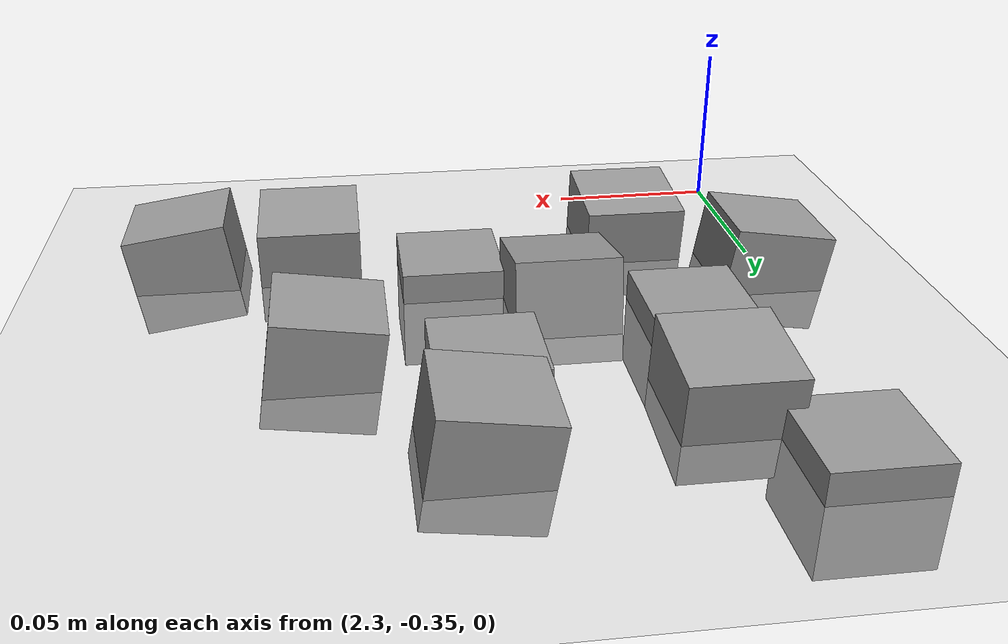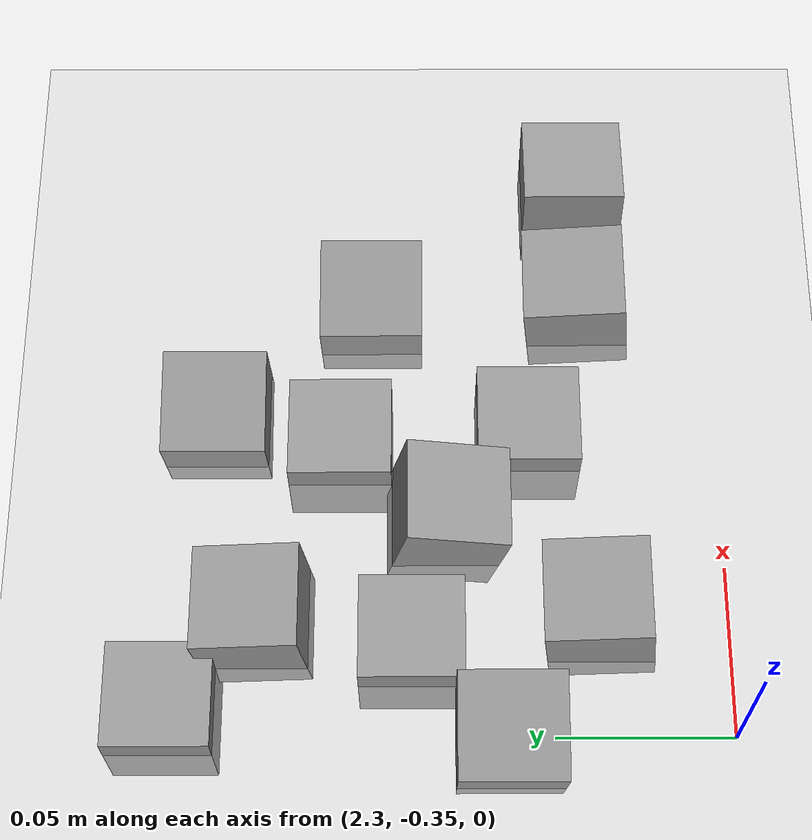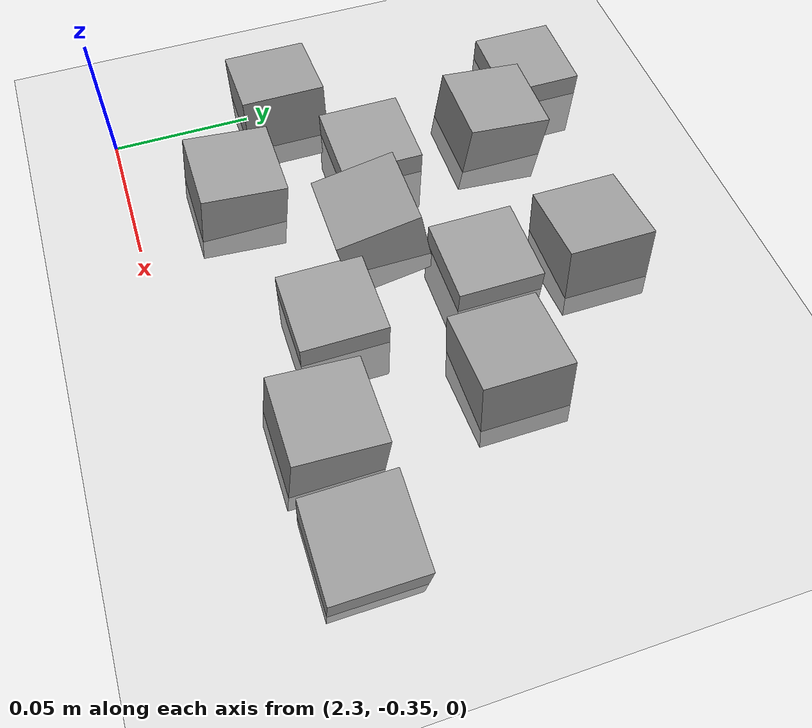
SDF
<sdf version="1.7">
 <world name="default">
  <model name="ground_plane">
   <static>1</static>
   <link name="link">
    <collision name="collision">
     <geometry><plane><normal>0 0 1</normal><size>100 100</size></plane></geometry>
     <surface><friction><ode><mu>100</mu><mu2>50</mu2></ode></friction></surface>
    </collision>
    <visual name="visual">
     <cast_shadows>0</cast_shadows>
     <geometry><plane><normal>0 0 1</normal><size>100 100</size></plane></geometry>
     <material>
      <script><uri>file://media/materials/scripts/gazebo.material</uri><name>Gazebo/Grey</name></script>
     </material>
    </visual>
   </link>
  </model>
  <model name="stone_road_4">
   <link name="link_0_clone_13">
    <inertial>
     <mass>1</mass>
     <inertia>
      <ixx>0.166667</ixx>
      <ixy>0</ixy>
      <ixz>0</ixz>
      <iyy>0.166667</iyy>
      <iyz>0</iyz>
      <izz>0.166667</izz>
     </inertia>
    </inertial>
    <pose>0.107601 -0.134881 0.003778 0.2 -0 0</pose>
    <kinematic>1</kinematic>
    <visual name="visual">
     <geometry><box><size>0.03 0.03 0.03</size></box></geometry>
     <material>
      <lighting>1</lighting>
      <script><uri>file://media/materials/scripts/gazebo.material</uri><name>Gazebo/Grey</name></script>
      <shader type="pixel"><normal_map>__default__</normal_map></shader>
      <ambient>0.3 0.3 0.3 1</ambient>
      <diffuse>0.7 0.7 0.7 1</diffuse>
      <specular>0.01 0.01 0.01 1</specular>
      <emissive>0 0 0 1</emissive>
     </material>
    </visual>
    <collision name="collision">
     <geometry><box><size>0.03 0.03 0.03</size></box></geometry>
     <surface>
      <friction>
       <ode><mu>1</mu><mu2>1</mu2><fdir1>0 0 0</fdir1><slip1>0</slip1><slip2>0</slip2></ode>
       <torsional>
        <coefficient>1</coefficient>
        <patch_radius>0</patch_radius>
        <surface_radius>0</surface_radius>
        <use_patch_radius>1</use_patch_radius>
        <ode><slip>0</slip></ode>
       </torsional>
      </friction>
      <bounce><restitution_coefficient>0</restitution_coefficient><threshold>1e+06</threshold></bounce>
      <contact>
       <collide_without_contact>0</collide_without_contact>
       <collide_without_contact_bitmask>1</collide_without_contact_bitmask>
       <collide_bitmask>1</collide_bitmask>
       <ode>
        <soft_cfm>0</soft_cfm>
        <soft_erp>0.2</soft_erp>
        <kp>1e+13</kp>
        <kd>1</kd>
        <max_vel>0.01</max_vel>
        <min_depth>0</min_depth>
       </ode>
       <bullet>
        <split_impulse>1</split_impulse>
        <split_impulse_penetration_threshold>-0.01</split_impulse_penetration_threshold>
        <soft_cfm>0</soft_cfm>
        <soft_erp>0.2</soft_erp>
        <kp>1e+13</kp>
        <kd>1</kd>
       </bullet>
      </contact>
     </surface>
    </collision>
   </link>
   <link name="link_0_clone_2_clone_2_clone_13_clone_clone_11">
    <inertial>
     <mass>1</mass>
     <inertia>
      <ixx>0.166667</ixx>
      <ixy>0</ixy>
      <ixz>0</ixz>
      <iyy>0.166667</iyy>
      <iyz>0</iyz>
      <izz>0.166667</izz>
     </inertia>
    </inertial>
    <pose>0.178889 -0.173779 0.003778 -0.1 0 0</pose>
    <kinematic>1</kinematic>
    <visual name="visual">
     <geometry><box><size>0.03 0.03 0.03</size></box></geometry>
     <material>
      <lighting>1</lighting>
      <script><uri>file://media/materials/scripts/gazebo.material</uri><name>Gazebo/Grey</name></script>
      <shader type="pixel"><normal_map>__default__</normal_map></shader>
      <ambient>0.3 0.3 0.3 1</ambient>
      <diffuse>0.7 0.7 0.7 1</diffuse>
      <specular>0.01 0.01 0.01 1</specular>
      <emissive>0 0 0 1</emissive>
     </material>
    </visual>
    <collision name="collision">
     <geometry><box><size>0.03 0.03 0.03</size></box></geometry>
     <surface>
      <friction>
       <ode><mu>1</mu><mu2>1</mu2><fdir1>0 0 0</fdir1><slip1>0</slip1><slip2>0</slip2></ode>
       <torsional>
        <coefficient>1</coefficient>
        <patch_radius>0</patch_radius>
        <surface_radius>0</surface_radius>
        <use_patch_radius>1</use_patch_radius>
        <ode><slip>0</slip></ode>
       </torsional>
      </friction>
      <bounce><restitution_coefficient>0</restitution_coefficient><threshold>1e+06</threshold></bounce>
      <contact>
       <collide_without_contact>0</collide_without_contact>
       <collide_without_contact_bitmask>1</collide_without_contact_bitmask>
       <collide_bitmask>1</collide_bitmask>
       <ode>
        <soft_cfm>0</soft_cfm>
        <soft_erp>0.2</soft_erp>
        <kp>1e+13</kp>
        <kd>1</kd>
        <max_vel>0.01</max_vel>
        <min_depth>0</min_depth>
       </ode>
       <bullet>
        <split_impulse>1</split_impulse>
        <split_impulse_penetration_threshold>-0.01</split_impulse_penetration_threshold>
        <soft_cfm>0</soft_cfm>
        <soft_erp>0.2</soft_erp>
        <kp>1e+13</kp>
        <kd>1</kd>
       </bullet>
      </contact>
     </surface>
    </collision>
   </link>
   <link name="link_0_clone_2_clone_2_clone_13_clone_clone_12">
    <inertial>
     <mass>1</mass>
     <inertia>
      <ixx>0.166667</ixx>
      <ixy>0</ixy>
      <ixz>0</ixz>
      <iyy>0.166667</iyy>
      <iyz>0</iyz>
      <izz>0.166667</izz>
     </inertia>
    </inertial>
    <pose>0.078701 -0.177208 0.003778 -0.1 0 0</pose>
    <kinematic>1</kinematic>
    <visual name="visual">
     <geometry><box><size>0.03 0.03 0.03</size></box></geometry>
     <material>
      <lighting>1</lighting>
      <script><uri>file://media/materials/scripts/gazebo.material</uri><name>Gazebo/Grey</name></script>
      <shader type="pixel"><normal_map>__default__</normal_map></shader>
      <ambient>0.3 0.3 0.3 1</ambient>
      <diffuse>0.7 0.7 0.7 1</diffuse>
      <specular>0.01 0.01 0.01 1</specular>
      <emissive>0 0 0 1</emissive>
     </material>
    </visual>
    <collision name="collision">
     <geometry><box><size>0.03 0.03 0.03</size></box></geometry>
     <surface>
      <friction>
       <ode><mu>1</mu><mu2>1</mu2><fdir1>0 0 0</fdir1><slip1>0</slip1><slip2>0</slip2></ode>
       <torsional>
        <coefficient>1</coefficient>
        <patch_radius>0</patch_radius>
        <surface_radius>0</surface_radius>
        <use_patch_radius>1</use_patch_radius>
        <ode><slip>0</slip></ode>
       </torsional>
      </friction>
      <bounce><restitution_coefficient>0</restitution_coefficient><threshold>1e+06</threshold></bounce>
      <contact>
       <collide_without_contact>0</collide_without_contact>
       <collide_without_contact_bitmask>1</collide_without_contact_bitmask>
       <collide_bitmask>1</collide_bitmask>
       <ode>
        <soft_cfm>0</soft_cfm>
        <soft_erp>0.2</soft_erp>
        <kp>1e+13</kp>
        <kd>1</kd>
        <max_vel>0.01</max_vel>
        <min_depth>0</min_depth>
       </ode>
       <bullet>
        <split_impulse>1</split_impulse>
        <split_impulse_penetration_threshold>-0.01</split_impulse_penetration_threshold>
        <soft_cfm>0</soft_cfm>
        <soft_erp>0.2</soft_erp>
        <kp>1e+13</kp>
        <kd>1</kd>
       </bullet>
      </contact>
     </surface>
    </collision>
   </link>
   <link name="link_0_clone_2_clone_2_clone_13_clone_clone_16_clone_14">
    <inertial>
     <mass>1</mass>
     <inertia>
      <ixx>0.166667</ixx>
      <ixy>0</ixy>
      <ixz>0</ixz>
      <iyy>0.166667</iyy>
      <iyz>0</iyz>
      <izz>0.166667</izz>
     </inertia>
    </inertial>
    <pose>0.051911 -0.054424 -0.006222 0 -0 0</pose>
    <kinematic>1</kinematic>
    <visual name="visual">
     <geometry><box><size>0.03 0.03 0.03</size></box></geometry>
     <material>
      <lighting>1</lighting>
      <script><uri>file://media/materials/scripts/gazebo.material</uri><name>Gazebo/Grey</name></script>
      <shader type="pixel"><normal_map>__default__</normal_map></shader>
      <ambient>0.3 0.3 0.3 1</ambient>
      <diffuse>0.7 0.7 0.7 1</diffuse>
      <specular>0.01 0.01 0.01 1</specular>
      <emissive>0 0 0 1</emissive>
     </material>
    </visual>
    <collision name="collision">
     <geometry><box><size>0.03 0.03 0.03</size></box></geometry>
     <surface>
      <friction>
       <ode><mu>1</mu><mu2>1</mu2><fdir1>0 0 0</fdir1><slip1>0</slip1><slip2>0</slip2></ode>
       <torsional>
        <coefficient>1</coefficient>
        <patch_radius>0</patch_radius>
        <surface_radius>0</surface_radius>
        <use_patch_radius>1</use_patch_radius>
        <ode><slip>0</slip></ode>
       </torsional>
      </friction>
      <bounce><restitution_coefficient>0</restitution_coefficient><threshold>1e+06</threshold></bounce>
      <contact>
       <collide_without_contact>0</collide_without_contact>
       <collide_without_contact_bitmask>1</collide_without_contact_bitmask>
       <collide_bitmask>1</collide_bitmask>
       <ode>
        <soft_cfm>0</soft_cfm>
        <soft_erp>0.2</soft_erp>
        <kp>1e+13</kp>
        <kd>1</kd>
        <max_vel>0.01</max_vel>
        <min_depth>0</min_depth>
       </ode>
       <bullet>
        <split_impulse>1</split_impulse>
        <split_impulse_penetration_threshold>-0.01</split_impulse_penetration_threshold>
        <soft_cfm>0</soft_cfm>
        <soft_erp>0.2</soft_erp>
        <kp>1e+13</kp>
        <kd>1</kd>
       </bullet>
      </contact>
     </surface>
    </collision>
   </link>
   <link name="link_0_clone_2_clone_2_clone_13_clone_clone_16_clone_15">
    <inertial>
     <mass>1</mass>
     <inertia>
      <ixx>0.166667</ixx>
      <ixy>0</ixy>
      <ixz>0</ixz>
      <iyy>0.166667</iyy>
      <iyz>0</iyz>
      <izz>0.166667</izz>
     </inertia>
    </inertial>
    <pose>0.133032 -0.103459 -0.006222 0 -0 0</pose>
    <kinematic>1</kinematic>
    <visual name="visual">
     <geometry><box><size>0.03 0.03 0.03</size></box></geometry>
     <material>
      <lighting>1</lighting>
      <script><uri>file://media/materials/scripts/gazebo.material</uri><name>Gazebo/Grey</name></script>
      <shader type="pixel"><normal_map>__default__</normal_map></shader>
      <ambient>0.3 0.3 0.3 1</ambient>
      <diffuse>0.7 0.7 0.7 1</diffuse>
      <specular>0.01 0.01 0.01 1</specular>
      <emissive>0 0 0 1</emissive>
     </material>
    </visual>
    <collision name="collision">
     <geometry><box><size>0.03 0.03 0.03</size></box></geometry>
     <surface>
      <friction>
       <ode><mu>1</mu><mu2>1</mu2><fdir1>0 0 0</fdir1><slip1>0</slip1><slip2>0</slip2></ode>
       <torsional>
        <coefficient>1</coefficient>
        <patch_radius>0</patch_radius>
        <surface_radius>0</surface_radius>
        <use_patch_radius>1</use_patch_radius>
        <ode><slip>0</slip></ode>
       </torsional>
      </friction>
      <bounce><restitution_coefficient>0</restitution_coefficient><threshold>1e+06</threshold></bounce>
      <contact>
       <collide_without_contact>0</collide_without_contact>
       <collide_without_contact_bitmask>1</collide_without_contact_bitmask>
       <collide_bitmask>1</collide_bitmask>
       <ode>
        <soft_cfm>0</soft_cfm>
        <soft_erp>0.2</soft_erp>
        <kp>1e+13</kp>
        <kd>1</kd>
        <max_vel>0.01</max_vel>
        <min_depth>0</min_depth>
       </ode>
       <bullet>
        <split_impulse>1</split_impulse>
        <split_impulse_penetration_threshold>-0.01</split_impulse_penetration_threshold>
        <soft_cfm>0</soft_cfm>
        <soft_erp>0.2</soft_erp>
        <kp>1e+13</kp>
        <kd>1</kd>
       </bullet>
      </contact>
     </surface>
    </collision>
   </link>
   <link name="link_0_clone_2_clone_2_clone_13_clone_clone_16_clone_16">
    <inertial>
     <mass>1</mass>
     <inertia>
      <ixx>0.166667</ixx>
      <ixy>0</ixy>
      <ixz>0</ixz>
      <iyy>0.166667</iyy>
      <iyz>0</iyz>
      <izz>0.166667</izz>
     </inertia>
    </inertial>
    <pose>0.071475 -0.124425 -0.006222 0 -0 0</pose>
    <kinematic>1</kinematic>
    <visual name="visual">
     <geometry><box><size>0.03 0.03 0.03</size></box></geometry>
     <material>
      <lighting>1</lighting>
      <script><uri>file://media/materials/scripts/gazebo.material</uri><name>Gazebo/Grey</name></script>
      <shader type="pixel"><normal_map>__default__</normal_map></shader>
      <ambient>0.3 0.3 0.3 1</ambient>
      <diffuse>0.7 0.7 0.7 1</diffuse>
      <specular>0.01 0.01 0.01 1</specular>
      <emissive>0 0 0 1</emissive>
     </material>
    </visual>
    <collision name="collision">
     <geometry><box><size>0.03 0.03 0.03</size></box></geometry>
     <surface>
      <friction>
       <ode><mu>1</mu><mu2>1</mu2><fdir1>0 0 0</fdir1><slip1>0</slip1><slip2>0</slip2></ode>
       <torsional>
        <coefficient>1</coefficient>
        <patch_radius>0</patch_radius>
        <surface_radius>0</surface_radius>
        <use_patch_radius>1</use_patch_radius>
        <ode><slip>0</slip></ode>
       </torsional>
      </friction>
      <bounce><restitution_coefficient>0</restitution_coefficient><threshold>1e+06</threshold></bounce>
      <contact>
       <collide_without_contact>0</collide_without_contact>
       <collide_without_contact_bitmask>1</collide_without_contact_bitmask>
       <collide_bitmask>1</collide_bitmask>
       <ode>
        <soft_cfm>0</soft_cfm>
        <soft_erp>0.2</soft_erp>
        <kp>1e+13</kp>
        <kd>1</kd>
        <max_vel>0.01</max_vel>
        <min_depth>0</min_depth>
       </ode>
       <bullet>
        <split_impulse>1</split_impulse>
        <split_impulse_penetration_threshold>-0.01</split_impulse_penetration_threshold>
        <soft_cfm>0</soft_cfm>
        <soft_erp>0.2</soft_erp>
        <kp>1e+13</kp>
        <kd>1</kd>
       </bullet>
      </contact>
     </surface>
    </collision>
   </link>
   <link name="link_0_clone_2_clone_2_clone_13_clone_clone_16_clone_18">
    <inertial>
     <mass>1</mass>
     <inertia>
      <ixx>0.166667</ixx>
      <ixy>0</ixy>
      <ixz>0</ixz>
      <iyy>0.166667</iyy>
      <iyz>0</iyz>
      <izz>0.166667</izz>
     </inertia>
    </inertial>
    <pose>0.137197 -0.158693 -0.006222 0 -0 0</pose>
    <kinematic>1</kinematic>
    <visual name="visual">
     <geometry><box><size>0.03 0.03 0.03</size></box></geometry>
     <material>
      <lighting>1</lighting>
      <script><uri>file://media/materials/scripts/gazebo.material</uri><name>Gazebo/Grey</name></script>
      <shader type="pixel"><normal_map>__default__</normal_map></shader>
      <ambient>0.3 0.3 0.3 1</ambient>
      <diffuse>0.7 0.7 0.7 1</diffuse>
      <specular>0.01 0.01 0.01 1</specular>
      <emissive>0 0 0 1</emissive>
     </material>
    </visual>
    <collision name="collision">
     <geometry><box><size>0.03 0.03 0.03</size></box></geometry>
     <surface>
      <friction>
       <ode><mu>1</mu><mu2>1</mu2><fdir1>0 0 0</fdir1><slip1>0</slip1><slip2>0</slip2></ode>
       <torsional>
        <coefficient>1</coefficient>
        <patch_radius>0</patch_radius>
        <surface_radius>0</surface_radius>
        <use_patch_radius>1</use_patch_radius>
        <ode><slip>0</slip></ode>
       </torsional>
      </friction>
      <bounce><restitution_coefficient>0</restitution_coefficient><threshold>1e+06</threshold></bounce>
      <contact>
       <collide_without_contact>0</collide_without_contact>
       <collide_without_contact_bitmask>1</collide_without_contact_bitmask>
       <collide_bitmask>1</collide_bitmask>
       <ode>
        <soft_cfm>0</soft_cfm>
        <soft_erp>0.2</soft_erp>
        <kp>1e+13</kp>
        <kd>1</kd>
        <max_vel>0.01</max_vel>
        <min_depth>0</min_depth>
       </ode>
       <bullet>
        <split_impulse>1</split_impulse>
        <split_impulse_penetration_threshold>-0.01</split_impulse_penetration_threshold>
        <soft_cfm>0</soft_cfm>
        <soft_erp>0.2</soft_erp>
        <kp>1e+13</kp>
        <kd>1</kd>
       </bullet>
      </contact>
     </surface>
    </collision>
   </link>
   <link name="link_0_clone_2_clone_2_clone_13_clone_clone_5">
    <inertial>
     <mass>1</mass>
     <inertia>
      <ixx>0.166667</ixx>
      <ixy>0</ixy>
      <ixz>0</ixz>
      <iyy>0.166667</iyy>
      <iyz>0</iyz>
      <izz>0.166667</izz>
     </inertia>
    </inertial>
    <pose>0.076743 -0.079785 0.003778 -0.1 0 0</pose>
    <kinematic>1</kinematic>
    <visual name="visual">
     <geometry><box><size>0.03 0.03 0.03</size></box></geometry>
     <material>
      <lighting>1</lighting>
      <script><uri>file://media/materials/scripts/gazebo.material</uri><name>Gazebo/Grey</name></script>
      <shader type="pixel"><normal_map>__default__</normal_map></shader>
      <ambient>0.3 0.3 0.3 1</ambient>
      <diffuse>0.7 0.7 0.7 1</diffuse>
      <specular>0.01 0.01 0.01 1</specular>
      <emissive>0 0 0 1</emissive>
     </material>
    </visual>
    <collision name="collision">
     <geometry><box><size>0.03 0.03 0.03</size></box></geometry>
     <surface>
      <friction>
       <ode><mu>1</mu><mu2>1</mu2><fdir1>0 0 0</fdir1><slip1>0</slip1><slip2>0</slip2></ode>
       <torsional>
        <coefficient>1</coefficient>
        <patch_radius>0</patch_radius>
        <surface_radius>0</surface_radius>
        <use_patch_radius>1</use_patch_radius>
        <ode><slip>0</slip></ode>
       </torsional>
      </friction>
      <bounce><restitution_coefficient>0</restitution_coefficient><threshold>1e+06</threshold></bounce>
      <contact>
       <collide_without_contact>0</collide_without_contact>
       <collide_without_contact_bitmask>1</collide_without_contact_bitmask>
       <collide_bitmask>1</collide_bitmask>
       <ode>
        <soft_cfm>0</soft_cfm>
        <soft_erp>0.2</soft_erp>
        <kp>1e+13</kp>
        <kd>1</kd>
        <max_vel>0.01</max_vel>
        <min_depth>0</min_depth>
       </ode>
       <bullet>
        <split_impulse>1</split_impulse>
        <split_impulse_penetration_threshold>-0.01</split_impulse_penetration_threshold>
        <soft_cfm>0</soft_cfm>
        <soft_erp>0.2</soft_erp>
        <kp>1e+13</kp>
        <kd>1</kd>
       </bullet>
      </contact>
     </surface>
    </collision>
   </link>
   <link name="link_0_clone_2_clone_2_clone_4">
    <inertial>
     <mass>1</mass>
     <inertia>
      <ixx>0.166667</ixx>
      <ixy>0</ixy>
      <ixz>0</ixz>
      <iyy>0.166667</iyy>
      <iyz>0</iyz>
      <izz>0.166667</izz>
     </inertia>
    </inertial>
    <pose>0.042048 -0.151731 0.003778 0 -0.15 0</pose>
    <kinematic>1</kinematic>
    <visual name="visual">
     <geometry><box><size>0.03 0.03 0.03</size></box></geometry>
     <material>
      <lighting>1</lighting>
      <script><uri>file://media/materials/scripts/gazebo.material</uri><name>Gazebo/Grey</name></script>
      <shader type="pixel"><normal_map>__default__</normal_map></shader>
      <ambient>0.3 0.3 0.3 1</ambient>
      <diffuse>0.7 0.7 0.7 1</diffuse>
      <specular>0.01 0.01 0.01 1</specular>
      <emissive>0 0 0 1</emissive>
     </material>
    </visual>
    <collision name="collision">
     <geometry><box><size>0.03 0.03 0.03</size></box></geometry>
     <surface>
      <friction>
       <ode><mu>1</mu><mu2>1</mu2><fdir1>0 0 0</fdir1><slip1>0</slip1><slip2>0</slip2></ode>
       <torsional>
        <coefficient>1</coefficient>
        <patch_radius>0</patch_radius>
        <surface_radius>0</surface_radius>
        <use_patch_radius>1</use_patch_radius>
        <ode><slip>0</slip></ode>
       </torsional>
      </friction>
      <bounce><restitution_coefficient>0</restitution_coefficient><threshold>1e+06</threshold></bounce>
      <contact>
       <collide_without_contact>0</collide_without_contact>
       <collide_without_contact_bitmask>1</collide_without_contact_bitmask>
       <collide_bitmask>1</collide_bitmask>
       <ode>
        <soft_cfm>0</soft_cfm>
        <soft_erp>0.2</soft_erp>
        <kp>1e+13</kp>
        <kd>1</kd>
        <max_vel>0.01</max_vel>
        <min_depth>0</min_depth>
       </ode>
       <bullet>
        <split_impulse>1</split_impulse>
        <split_impulse_penetration_threshold>-0.01</split_impulse_penetration_threshold>
        <soft_cfm>0</soft_cfm>
        <soft_erp>0.2</soft_erp>
        <kp>1e+13</kp>
        <kd>1</kd>
       </bullet>
      </contact>
     </surface>
    </collision>
   </link>
   <link name="link_0_clone_2_clone_2_clone_5">
    <inertial>
     <mass>1</mass>
     <inertia>
      <ixx>0.166667</ixx>
      <ixy>0</ixy>
      <ixz>0</ixz>
      <iyy>0.166667</iyy>
      <iyz>0</iyz>
      <izz>0.166667</izz>
     </inertia>
    </inertial>
    <pose>0.13842 -0.067468 0.003778 0 -0.15 0</pose>
    <kinematic>1</kinematic>
    <visual name="visual">
     <geometry><box><size>0.03 0.03 0.03</size></box></geometry>
     <material>
      <lighting>1</lighting>
      <script><uri>file://media/materials/scripts/gazebo.material</uri><name>Gazebo/Grey</name></script>
      <shader type="pixel"><normal_map>__default__</normal_map></shader>
      <ambient>0.3 0.3 0.3 1</ambient>
      <diffuse>0.7 0.7 0.7 1</diffuse>
      <specular>0.01 0.01 0.01 1</specular>
      <emissive>0 0 0 1</emissive>
     </material>
    </visual>
    <collision name="collision">
     <geometry><box><size>0.03 0.03 0.03</size></box></geometry>
     <surface>
      <friction>
       <ode><mu>1</mu><mu2>1</mu2><fdir1>0 0 0</fdir1><slip1>0</slip1><slip2>0</slip2></ode>
       <torsional>
        <coefficient>1</coefficient>
        <patch_radius>0</patch_radius>
        <surface_radius>0</surface_radius>
        <use_patch_radius>1</use_patch_radius>
        <ode><slip>0</slip></ode>
       </torsional>
      </friction>
      <bounce><restitution_coefficient>0</restitution_coefficient><threshold>1e+06</threshold></bounce>
      <contact>
       <collide_without_contact>0</collide_without_contact>
       <collide_without_contact_bitmask>1</collide_without_contact_bitmask>
       <collide_bitmask>1</collide_bitmask>
       <ode>
        <soft_cfm>0</soft_cfm>
        <soft_erp>0.2</soft_erp>
        <kp>1e+13</kp>
        <kd>1</kd>
        <max_vel>0.01</max_vel>
        <min_depth>0</min_depth>
       </ode>
       <bullet>
        <split_impulse>1</split_impulse>
        <split_impulse_penetration_threshold>-0.01</split_impulse_penetration_threshold>
        <soft_cfm>0</soft_cfm>
        <soft_erp>0.2</soft_erp>
        <kp>1e+13</kp>
        <kd>1</kd>
       </bullet>
      </contact>
     </surface>
    </collision>
   </link>
   <link name="link_0_clone_2_clone_2_clone_7">
    <inertial>
     <mass>1</mass>
     <inertia>
      <ixx>0.166667</ixx>
      <ixy>0</ixy>
      <ixz>0</ixz>
      <iyy>0.166667</iyy>
      <iyz>0</iyz>
      <izz>0.166667</izz>
     </inertia>
    </inertial>
    <pose>0.175499 -0.112442 0.003778 0 -0.15 0</pose>
    <kinematic>1</kinematic>
    <visual name="visual">
     <geometry><box><size>0.03 0.03 0.03</size></box></geometry>
     <material>
      <lighting>1</lighting>
      <script><uri>file://media/materials/scripts/gazebo.material</uri><name>Gazebo/Grey</name></script>
      <shader type="pixel"><normal_map>__default__</normal_map></shader>
      <ambient>0.3 0.3 0.3 1</ambient>
      <diffuse>0.7 0.7 0.7 1</diffuse>
      <specular>0.01 0.01 0.01 1</specular>
      <emissive>0 0 0 1</emissive>
     </material>
    </visual>
    <collision name="collision">
     <geometry><box><size>0.03 0.03 0.03</size></box></geometry>
     <surface>
      <friction>
       <ode><mu>1</mu><mu2>1</mu2><fdir1>0 0 0</fdir1><slip1>0</slip1><slip2>0</slip2></ode>
       <torsional>
        <coefficient>1</coefficient>
        <patch_radius>0</patch_radius>
        <surface_radius>0</surface_radius>
        <use_patch_radius>1</use_patch_radius>
        <ode><slip>0</slip></ode>
       </torsional>
      </friction>
      <bounce><restitution_coefficient>0</restitution_coefficient><threshold>1e+06</threshold></bounce>
      <contact>
       <collide_without_contact>0</collide_without_contact>
       <collide_without_contact_bitmask>1</collide_without_contact_bitmask>
       <collide_bitmask>1</collide_bitmask>
       <ode>
        <soft_cfm>0</soft_cfm>
        <soft_erp>0.2</soft_erp>
        <kp>1e+13</kp>
        <kd>1</kd>
        <max_vel>0.01</max_vel>
        <min_depth>0</min_depth>
       </ode>
       <bullet>
        <split_impulse>1</split_impulse>
        <split_impulse_penetration_threshold>-0.01</split_impulse_penetration_threshold>
        <soft_cfm>0</soft_cfm>
        <soft_erp>0.2</soft_erp>
        <kp>1e+13</kp>
        <kd>1</kd>
       </bullet>
      </contact>
     </surface>
    </collision>
   </link>
   <static>0</static>
   <pose>2.25857 -0.135925 -0 0 -0 0</pose>
  </model>
  <model name="stone_road_9">
   <link name="link_0_clone_2_clone_5">
    <inertial>
     <mass>1</mass>
     <inertia>
      <ixx>0.166667</ixx>
      <ixy>0</ixy>
      <ixz>0</ixz>
      <iyy>0.166667</iyy>
      <iyz>0</iyz>
      <izz>0.166667</izz>
     </inertia>
    </inertial>
    <pose>-0.268485 0.053169 0.003778 0 0.15 0</pose>
    <kinematic>1</kinematic>
    <visual name="visual">
     <geometry><box><size>0.03 0.03 0.03</size></box></geometry>
     <material>
      <lighting>1</lighting>
      <script><uri>file://media/materials/scripts/gazebo.material</uri><name>Gazebo/Grey</name></script>
      <shader type="pixel"><normal_map>__default__</normal_map></shader>
      <ambient>0.3 0.3 0.3 1</ambient>
      <diffuse>0.7 0.7 0.7 1</diffuse>
      <specular>0.01 0.01 0.01 1</specular>
      <emissive>0 0 0 1</emissive>
     </material>
    </visual>
    <collision name="collision">
     <geometry><box><size>0.03 0.03 0.03</size></box></geometry>
     <surface>
      <friction>
       <ode><mu>1</mu><mu2>1</mu2><fdir1>0 0 0</fdir1><slip1>0</slip1><slip2>0</slip2></ode>
       <torsional>
        <coefficient>1</coefficient>
        <patch_radius>0</patch_radius>
        <surface_radius>0</surface_radius>
        <use_patch_radius>1</use_patch_radius>
        <ode><slip>0</slip></ode>
       </torsional>
      </friction>
      <bounce><restitution_coefficient>0</restitution_coefficient><threshold>1e+06</threshold></bounce>
      <contact>
       <collide_without_contact>0</collide_without_contact>
       <collide_without_contact_bitmask>1</collide_without_contact_bitmask>
       <collide_bitmask>1</collide_bitmask>
       <ode>
        <soft_cfm>0</soft_cfm>
        <soft_erp>0.2</soft_erp>
        <kp>1e+13</kp>
        <kd>1</kd>
        <max_vel>0.01</max_vel>
        <min_depth>0</min_depth>
       </ode>
       <bullet>
        <split_impulse>1</split_impulse>
        <split_impulse_penetration_threshold>-0.01</split_impulse_penetration_threshold>
        <soft_cfm>0</soft_cfm>
        <soft_erp>0.2</soft_erp>
        <kp>1e+13</kp>
        <kd>1</kd>
       </bullet>
      </contact>
     </surface>
    </collision>
   </link>
   <static>0</static>
   <pose>2.743 -0.362549 -0 0 -0 0</pose>
  </model>
 </world>
</sdf>
